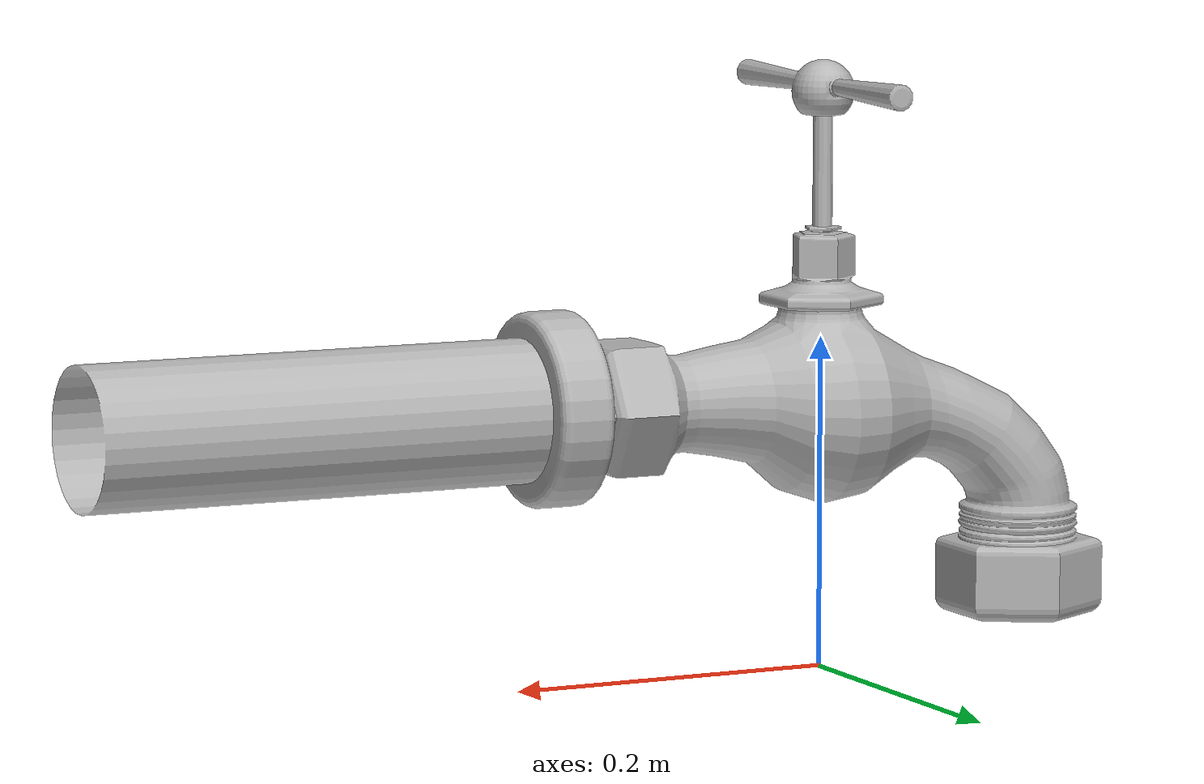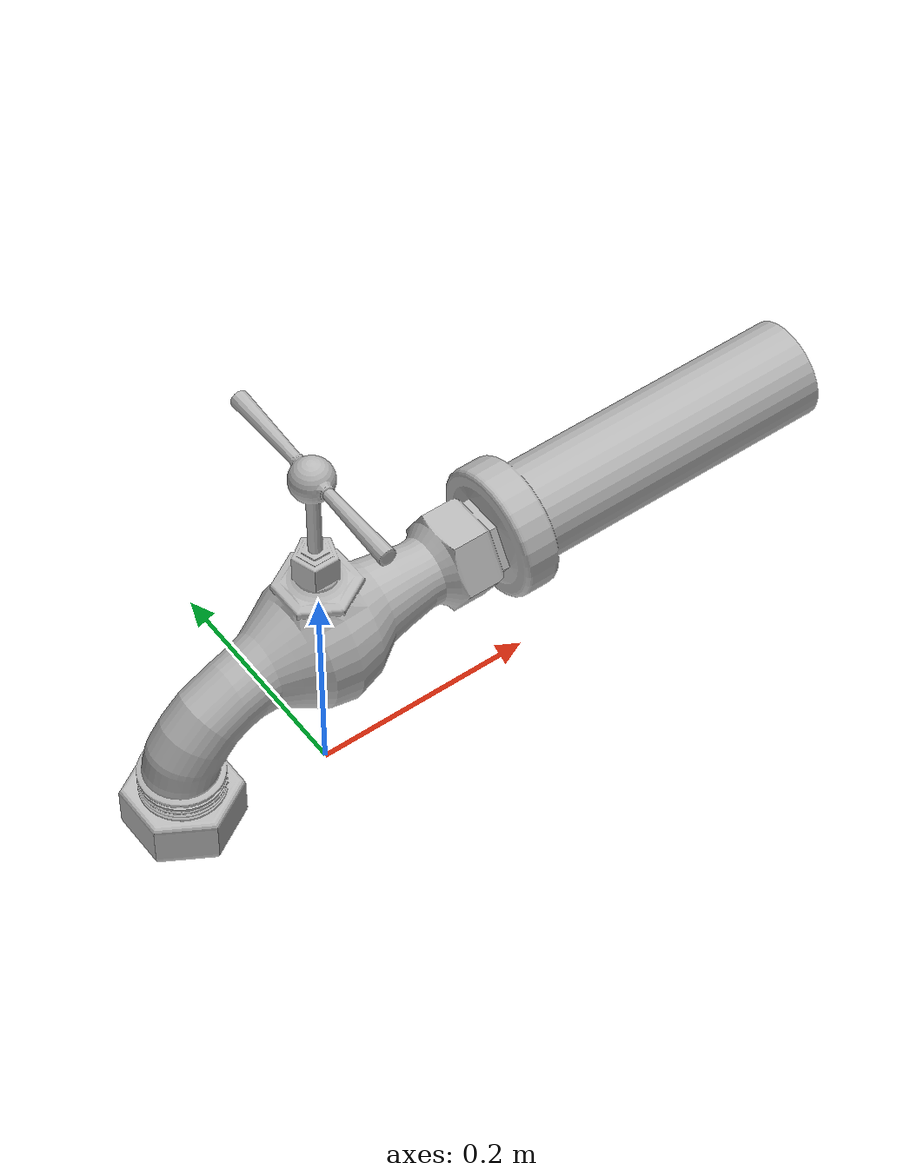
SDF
<?xml version='1.0'?>
<sdf version="1.6">
<model name="llave_agua">
  <static>true</static>
    <link name="link">
      <inertial>
        <mass>1</mass>
        <inertia>
          <ixx>0.2</ixx>
          <ixy>0</ixy>
          <ixz>0</ixz>
          <iyy>0.2</iyy>
          <iyz>0</iyz>
          <izz>0.2</izz>
        </inertia>
        <pose frame=''>0 0 0.36 0 0 0</pose>
      </inertial>
      <visual name="visual">
        <cast_shadows>1</cast_shadows>
        <geometry>
          <mesh>
            <uri>model://llave_agua/meshes/model.dae</uri>
          </mesh>
        </geometry>
        <pose frame=''>0 0 0 0 0 0</pose>
      </visual>
      <collision name="collision_0">
        <pose>0.16 -0.005 0.17 3.14159 1.57079 3.14159</pose>
        <geometry>
          <cylinder>
            <radius>0.04</radius>
            <length>0.58</length>
          </cylinder>
        </geometry>
      </collision>
    </link>
  </model>
</sdf>
